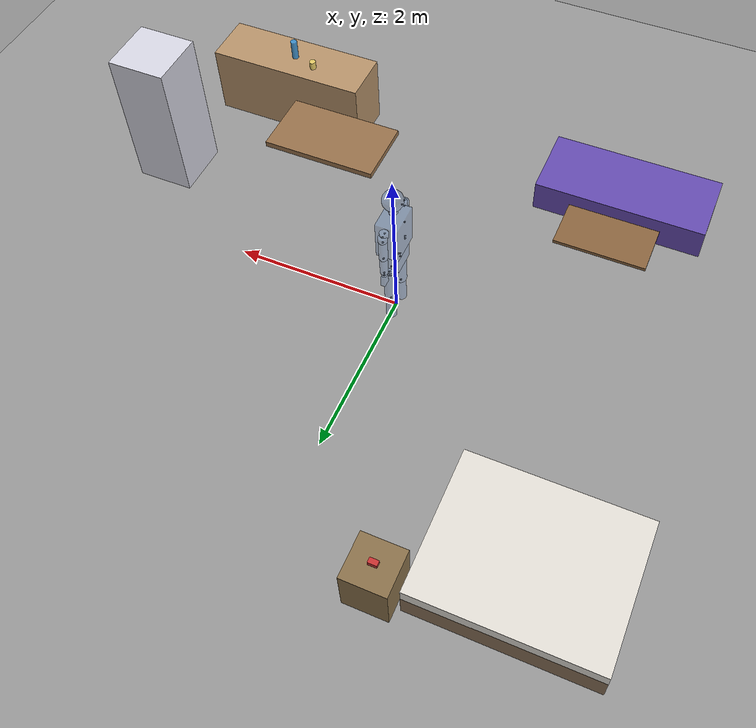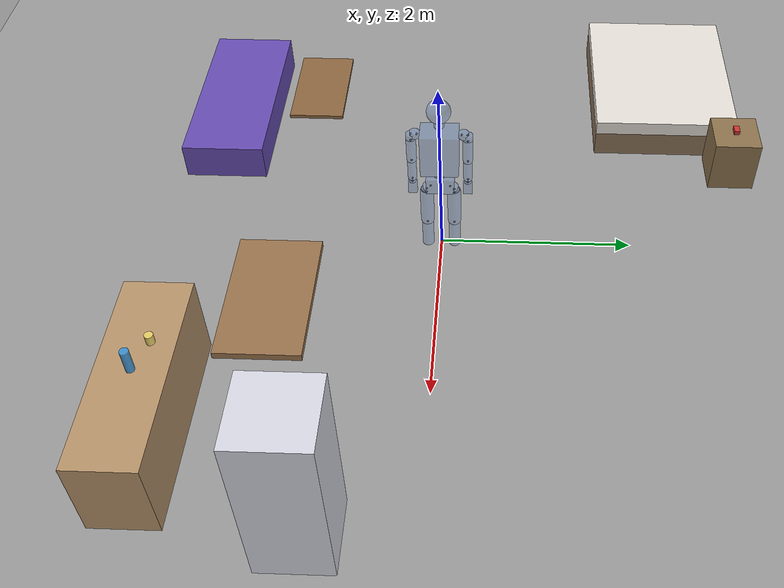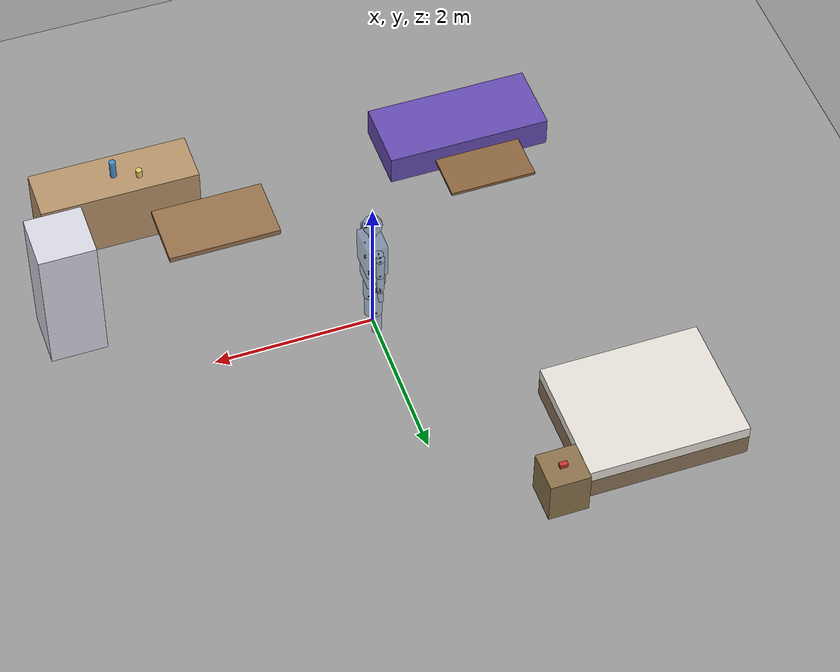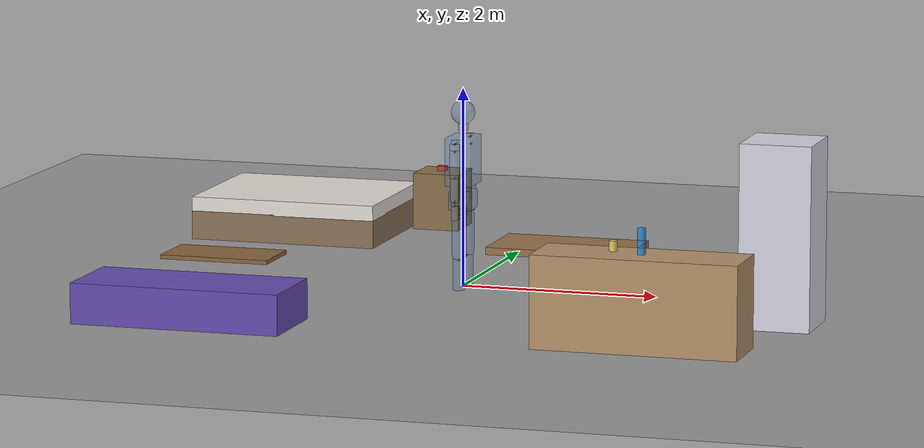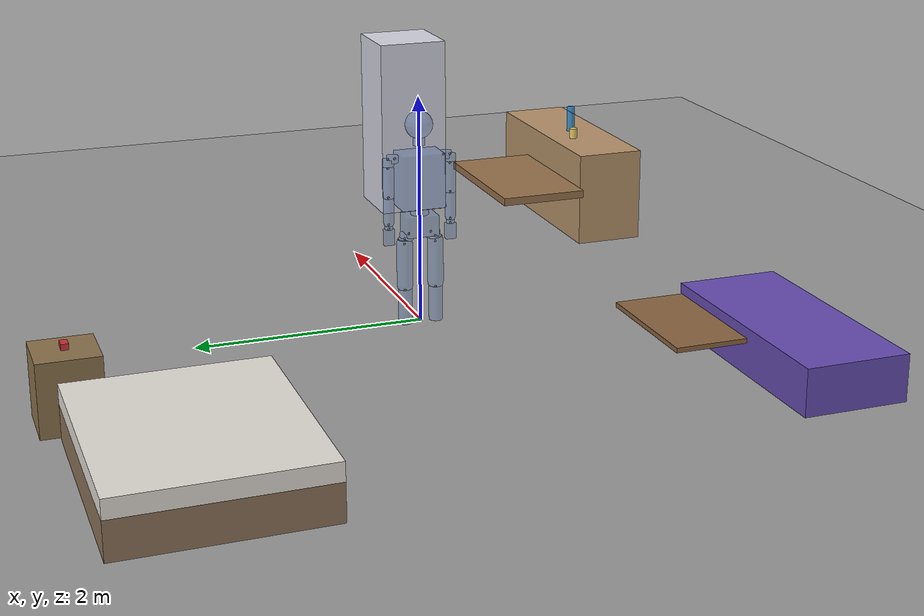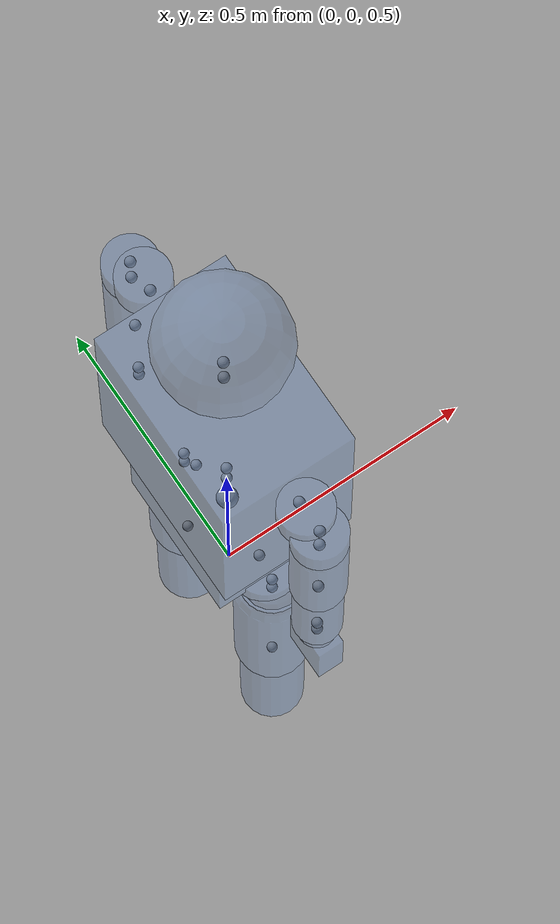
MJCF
<mujoco model="CHATR-H170">
  <compiler angle="radian" coordinate="local" autolimits="true"/>
  <option timestep="0.002" gravity="0 0 -9.81" integrator="implicitfast" cone="pyramidal" impratio="10"/>
  <default>
    <default class="collision">
      <geom contype="1" conaffinity="1" friction="0.8 0.02 0.001" rgba="0.3 0.5 0.8 0.3"/>
    </default>
    <default class="visual">
      <geom contype="0" conaffinity="0" group="1" rgba="0.7 0.7 0.8 1.0"/>
    </default>
    <default class="revolute">
      <joint type="hinge" damping="2.5" armature="0.05" frictionloss="0.5"/>
    </default>
  </default>
  <worldbody>
    <geom name="floor" type="plane" size="20 20 0.1" rgba="0.6 0.6 0.6 1" contype="1" conaffinity="1" friction="0.8 0.02 0.001"/>
    <light directional="true" diffuse="0.8 0.8 0.8" specular="0.2 0.2 0.2" pos="0 0 5" dir="0 0 -1"/>
    <body name="pelvis" pos="0 0 0.88">
      <inertial pos="0.0 0.0 0.0" mass="12.2" fullinertia="0.1 0.08 0.09 0.0 0.0 0.0"/>
      <geom name="pelvis_col" class="collision" pos="0.0 0.0 0.0" type="box" size="0.11 0.14 0.09"/>
      <freejoint name="root"/>
      <body name="waist_intermediate_link" pos="0.0 0.0 0.12">
        <inertial pos="0.0 0.0 0.02" mass="1.0" fullinertia="0.005 0.005 0.006 0.0 0.0 0.0"/>
        <geom name="waist_intermediate_link_col" class="collision" pos="0.0 0.0 0.0" type="cylinder" size="0.08 0.03"/>
        <joint name="waist_yaw" class="revolute" axis="0.0 0.0 1.0" range="-1.57 1.57"/>
        <site name="waist_yaw_site" size="0.01"/>
        <body name="torso" pos="0.0 0.0 0.06">
          <inertial pos="0.01 0.0 0.22" mass="16.2" fullinertia="0.3 0.25 0.22 0.0 0.0 0.0"/>
          <geom name="torso_col" class="collision" pos="0.0 0.0 0.22" type="box" size="0.13 0.19 0.24"/>
          <joint name="waist_pitch" class="revolute" axis="0.0 1.0 0.0" range="-0.52 0.87"/>
          <site name="waist_pitch_site" size="0.01"/>
          <body name="neck_link" pos="0.0 0.0 0.52">
            <inertial pos="0.0 0.0 0.04" mass="0.6" fullinertia="0.002 0.002 0.002 0.0 0.0 0.0"/>
            <geom name="neck_link_col" class="collision" pos="0.0 0.0 0.04" type="cylinder" size="0.05 0.04"/>
            <joint name="neck_yaw" class="revolute" axis="0.0 0.0 1.0" range="-1.57 1.57"/>
            <site name="neck_yaw_site" size="0.01"/>
            <body name="head" pos="0.0 0.0 0.08">
              <inertial pos="0.02 0.0 0.1" mass="2.8" fullinertia="0.022 0.02 0.019 0.0 0.0 0.0"/>
              <geom name="head_col" class="collision" pos="0.0 0.0 0.1" type="sphere" size="0.12"/>
              <joint name="neck_pitch" class="revolute" axis="0.0 1.0 0.0" range="-0.78 0.78"/>
              <site name="neck_pitch_site" size="0.01"/>
            </body>
          </body>
          <body name="l_shoulder_pitch_link" pos="0.0 0.22 0.42">
            <inertial pos="0.0 0.02 0.0" mass="0.7" fullinertia="0.002 0.002 0.002 0.0 0.0 0.0"/>
            <geom name="l_shoulder_pitch_link_col" class="collision" pos="0.0 0.02 0.0" type="cylinder" size="0.05 0.03"/>
            <joint name="l_shoulder_pitch" class="revolute" axis="0.0 1.0 0.0" range="-3.14 1.57"/>
            <site name="l_shoulder_pitch_site" size="0.01"/>
            <body name="l_shoulder_roll_link" pos="0.0 0.06 0.0">
              <inertial pos="0.0 0.0 -0.03" mass="0.6" fullinertia="0.002 0.002 0.002 0.0 0.0 0.0"/>
              <geom name="l_shoulder_roll_link_col" class="collision" pos="0.0 0.0 -0.03" type="cylinder" size="0.05 0.03"/>
              <joint name="l_shoulder_roll" class="revolute" axis="1.0 0.0 0.0" range="-0.35 2.35"/>
              <site name="l_shoulder_roll_site" size="0.01"/>
              <body name="l_upper_arm" pos="0.0 0.0 -0.08">
                <inertial pos="0.0 0.0 -0.12" mass="1.8" fullinertia="0.012 0.012 0.003 0.0 0.0 0.0"/>
                <geom name="l_upper_arm_col" class="collision" pos="0.0 0.0 -0.12" type="capsule" size="0.05 0.12"/>
                <joint name="l_shoulder_yaw" class="revolute" axis="0.0 0.0 1.0" range="-2.09 2.09"/>
                <site name="l_shoulder_yaw_site" size="0.01"/>
                <body name="l_forearm" pos="0.0 0.0 -0.26">
                  <inertial pos="0.0 0.0 -0.11" mass="1.4" fullinertia="0.008 0.008 0.002 0.0 0.0 0.0"/>
                  <geom name="l_forearm_col" class="collision" pos="0.0 0.0 -0.11" type="capsule" size="0.045 0.11"/>
                  <joint name="l_elbow_pitch" class="revolute" axis="0.0 1.0 0.0" range="-2.61 0.0"/>
                  <site name="l_elbow_pitch_site" size="0.01"/>
                  <body name="l_wrist_intermediate_link" pos="0.0 0.0 -0.24">
                    <inertial pos="0.0 0.0 -0.02" mass="0.3" fullinertia="0.001 0.001 0.001 0.0 0.0 0.0"/>
                    <geom name="l_wrist_intermediate_link_col" class="collision" pos="0.0 0.0 -0.02" type="cylinder" size="0.035 0.02"/>
                    <joint name="l_wrist_pitch" class="revolute" axis="0.0 1.0 0.0" range="-1.57 1.57"/>
                    <site name="l_wrist_pitch_site" size="0.01"/>
                    <body name="l_hand" pos="0.0 0.0 -0.04">
                      <inertial pos="0.0 0.0 -0.07" mass="0.7" fullinertia="0.002 0.002 0.001 0.0 0.0 0.0"/>
                      <geom name="l_hand_col" class="collision" pos="0.0 0.0 -0.07" type="box" size="0.025 0.045 0.07"/>
                      <joint name="l_wrist_yaw" class="revolute" axis="0.0 0.0 1.0" range="-1.57 1.57"/>
                      <site name="l_wrist_yaw_site" size="0.01"/>
                    </body>
                  </body>
                </body>
              </body>
            </body>
          </body>
          <body name="r_shoulder_pitch_link" pos="0.0 -0.22 0.42">
            <inertial pos="0.0 -0.02 0.0" mass="0.7" fullinertia="0.002 0.002 0.002 0.0 0.0 0.0"/>
            <geom name="r_shoulder_pitch_link_col" class="collision" pos="0.0 -0.02 0.0" type="cylinder" size="0.05 0.03"/>
            <joint name="r_shoulder_pitch" class="revolute" axis="0.0 1.0 0.0" range="-3.14 1.57"/>
            <site name="r_shoulder_pitch_site" size="0.01"/>
            <body name="r_shoulder_roll_link" pos="0.0 -0.06 0.0">
              <inertial pos="0.0 0.0 -0.03" mass="0.6" fullinertia="0.002 0.002 0.002 0.0 0.0 0.0"/>
              <geom name="r_shoulder_roll_link_col" class="collision" pos="0.0 0.0 -0.03" type="cylinder" size="0.05 0.03"/>
              <joint name="r_shoulder_roll" class="revolute" axis="1.0 0.0 0.0" range="-2.35 0.35"/>
              <site name="r_shoulder_roll_site" size="0.01"/>
              <body name="r_upper_arm" pos="0.0 0.0 -0.08">
                <inertial pos="0.0 0.0 -0.12" mass="1.8" fullinertia="0.012 0.012 0.003 0.0 0.0 0.0"/>
                <geom name="r_upper_arm_col" class="collision" pos="0.0 0.0 -0.12" type="capsule" size="0.05 0.12"/>
                <joint name="r_shoulder_yaw" class="revolute" axis="0.0 0.0 1.0" range="-2.09 2.09"/>
                <site name="r_shoulder_yaw_site" size="0.01"/>
                <body name="r_forearm" pos="0.0 0.0 -0.26">
                  <inertial pos="0.0 0.0 -0.11" mass="1.4" fullinertia="0.008 0.008 0.002 0.0 0.0 0.0"/>
                  <geom name="r_forearm_col" class="collision" pos="0.0 0.0 -0.11" type="capsule" size="0.045 0.11"/>
                  <joint name="r_elbow_pitch" class="revolute" axis="0.0 1.0 0.0" range="-2.61 0.0"/>
                  <site name="r_elbow_pitch_site" size="0.01"/>
                  <body name="r_wrist_intermediate_link" pos="0.0 0.0 -0.24">
                    <inertial pos="0.0 0.0 -0.02" mass="0.3" fullinertia="0.001 0.001 0.001 0.0 0.0 0.0"/>
                    <geom name="r_wrist_intermediate_link_col" class="collision" pos="0.0 0.0 -0.02" type="cylinder" size="0.035 0.02"/>
                    <joint name="r_wrist_pitch" class="revolute" axis="0.0 1.0 0.0" range="-1.57 1.57"/>
                    <site name="r_wrist_pitch_site" size="0.01"/>
                    <body name="r_hand" pos="0.0 0.0 -0.04">
                      <inertial pos="0.0 0.0 -0.07" mass="0.7" fullinertia="0.002 0.002 0.001 0.0 0.0 0.0"/>
                      <geom name="r_hand_col" class="collision" pos="0.0 0.0 -0.07" type="box" size="0.025 0.045 0.07"/>
                      <joint name="r_wrist_yaw" class="revolute" axis="0.0 0.0 1.0" range="-1.57 1.57"/>
                      <site name="r_wrist_yaw_site" size="0.01"/>
                    </body>
                  </body>
                </body>
              </body>
            </body>
          </body>
        </body>
      </body>
      <body name="l_hip_yaw_link" pos="0.0 0.1 -0.08">
        <inertial pos="0.0 0.02 -0.02" mass="1.0" fullinertia="0.003 0.003 0.003 0.0 0.0 0.0"/>
        <geom name="l_hip_yaw_link_col" class="collision" pos="0.0 0.02 -0.02" type="cylinder" size="0.06 0.03"/>
        <joint name="l_hip_yaw" class="revolute" axis="0.0 0.0 1.0" range="-0.78 0.78"/>
        <site name="l_hip_yaw_site" size="0.01"/>
        <body name="l_hip_roll_link" pos="0.0 0.04 -0.04">
          <inertial pos="0.0 0.0 -0.03" mass="1.0" fullinertia="0.003 0.003 0.003 0.0 0.0 0.0"/>
          <geom name="l_hip_roll_link_col" class="collision" pos="0.0 0.0 -0.03" type="cylinder" size="0.06 0.03"/>
          <joint name="l_hip_roll" class="revolute" axis="1.0 0.0 0.0" range="-0.52 0.87"/>
          <site name="l_hip_roll_site" size="0.01"/>
          <body name="l_thigh" pos="0.0 0.0 -0.05">
            <inertial pos="0.0 0.0 -0.18" mass="4.8" fullinertia="0.075 0.075 0.014 0.0 0.0 0.0"/>
            <geom name="l_thigh_col" class="collision" pos="0.0 0.0 -0.18" type="capsule" size="0.07 0.19"/>
            <joint name="l_hip_pitch" class="revolute" axis="0.0 1.0 0.0" range="-1.57 1.05"/>
            <site name="l_hip_pitch_site" size="0.01"/>
            <body name="l_shank" pos="0.0 0.0 -0.42">
              <inertial pos="0.0 0.0 -0.17" mass="3.4" fullinertia="0.045 0.045 0.008 0.0 0.0 0.0"/>
              <geom name="l_shank_col" class="collision" pos="0.0 0.0 -0.17" type="capsule" size="0.06 0.18"/>
              <joint name="l_knee_pitch" class="revolute" axis="0.0 1.0 0.0" range="0.0 2.61"/>
              <site name="l_knee_pitch_site" size="0.01"/>
              <body name="l_ankle_pitch_link" pos="0.0 0.0 -0.4">
                <inertial pos="0.0 0.0 -0.02" mass="0.6" fullinertia="0.002 0.002 0.002 0.0 0.0 0.0"/>
                <geom name="l_ankle_pitch_link_col" class="collision" pos="0.0 0.0 -0.02" type="cylinder" size="0.045 0.025"/>
                <joint name="l_ankle_pitch" class="revolute" axis="0.0 1.0 0.0" range="-0.87 0.78"/>
                <site name="l_ankle_pitch_site" size="0.01"/>
                <body name="l_foot" pos="0.0 0.0 -0.05">
                  <inertial pos="0.04 0.0 -0.03" mass="1.3" fullinertia="0.005 0.011 0.013 0.0 0.0 0.0"/>
                  <geom name="l_foot_col" class="collision" pos="0.04 0.0 -0.03" type="box" size="0.12 0.06 0.03"/>
                  <joint name="l_ankle_roll" class="revolute" axis="1.0 0.0 0.0" range="-0.52 0.52"/>
                  <site name="l_ankle_roll_site" size="0.01"/>
                  <site name="l_foot_touch_site" pos="0 0 -0.02" size="0.05 0.12" type="box"/>
                </body>
              </body>
            </body>
          </body>
        </body>
      </body>
      <body name="r_hip_yaw_link" pos="0.0 -0.1 -0.08">
        <inertial pos="0.0 -0.02 -0.02" mass="1.0" fullinertia="0.003 0.003 0.003 0.0 0.0 0.0"/>
        <geom name="r_hip_yaw_link_col" class="collision" pos="0.0 -0.02 -0.02" type="cylinder" size="0.06 0.03"/>
        <joint name="r_hip_yaw" class="revolute" axis="0.0 0.0 1.0" range="-0.78 0.78"/>
        <site name="r_hip_yaw_site" size="0.01"/>
        <body name="r_hip_roll_link" pos="0.0 -0.04 -0.04">
          <inertial pos="0.0 0.0 -0.03" mass="1.0" fullinertia="0.003 0.003 0.003 0.0 0.0 0.0"/>
          <geom name="r_hip_roll_link_col" class="collision" pos="0.0 0.0 -0.03" type="cylinder" size="0.06 0.03"/>
          <joint name="r_hip_roll" class="revolute" axis="1.0 0.0 0.0" range="-0.87 0.52"/>
          <site name="r_hip_roll_site" size="0.01"/>
          <body name="r_thigh" pos="0.0 0.0 -0.05">
            <inertial pos="0.0 0.0 -0.18" mass="4.8" fullinertia="0.075 0.075 0.014 0.0 0.0 0.0"/>
            <geom name="r_thigh_col" class="collision" pos="0.0 0.0 -0.18" type="capsule" size="0.07 0.19"/>
            <joint name="r_hip_pitch" class="revolute" axis="0.0 1.0 0.0" range="-1.57 1.05"/>
            <site name="r_hip_pitch_site" size="0.01"/>
            <body name="r_shank" pos="0.0 0.0 -0.42">
              <inertial pos="0.0 0.0 -0.17" mass="3.4" fullinertia="0.045 0.045 0.008 0.0 0.0 0.0"/>
              <geom name="r_shank_col" class="collision" pos="0.0 0.0 -0.17" type="capsule" size="0.06 0.18"/>
              <joint name="r_knee_pitch" class="revolute" axis="0.0 1.0 0.0" range="0.0 2.61"/>
              <site name="r_knee_pitch_site" size="0.01"/>
              <body name="r_ankle_pitch_link" pos="0.0 0.0 -0.4">
                <inertial pos="0.0 0.0 -0.02" mass="0.6" fullinertia="0.002 0.002 0.002 0.0 0.0 0.0"/>
                <geom name="r_ankle_pitch_link_col" class="collision" pos="0.0 0.0 -0.02" type="cylinder" size="0.045 0.025"/>
                <joint name="r_ankle_pitch" class="revolute" axis="0.0 1.0 0.0" range="-0.87 0.78"/>
                <site name="r_ankle_pitch_site" size="0.01"/>
                <body name="r_foot" pos="0.0 0.0 -0.05">
                  <inertial pos="0.04 0.0 -0.03" mass="1.3" fullinertia="0.005 0.011 0.013 0.0 0.0 0.0"/>
                  <geom name="r_foot_col" class="collision" pos="0.04 0.0 -0.03" type="box" size="0.12 0.06 0.03"/>
                  <joint name="r_ankle_roll" class="revolute" axis="1.0 0.0 0.0" range="-0.52 0.52"/>
                  <site name="r_ankle_roll_site" size="0.01"/>
                  <site name="r_foot_touch_site" pos="0 0 -0.02" size="0.05 0.12" type="box"/>
                </body>
              </body>
            </body>
          </body>
        </body>
      </body>
      <site name="pelvis" pos="0 0 0" size="0.02"/>
    </body>
    <camera name="head_rgbd" pos="0.05 0 1.65" xyaxes="0 -1 0 0 0 1" fovy="60" resolution="640 480"/>
    <geom name="kitchen_counter" type="box" pos="2.5 -2.5 0.45" size="1.0 0.325 0.45" rgba="0.72 0.58 0.42 1" group="2" contype="1" conaffinity="1"/>
    <geom name="refrigerator" type="box" pos="3.5 -1.0 0.9" size="0.35 0.35 0.9" rgba="0.85 0.85 0.90 1" group="2" contype="1" conaffinity="1"/>
    <geom name="dining_table_top" type="box" pos="1.5 -1.5 0.735" size="0.7 0.4 0.035" rgba="0.60 0.45 0.30 1" group="2" contype="1" conaffinity="1"/>
    <geom name="sofa_seat" type="box" pos="-2.0 -2.5 0.2" size="1.05 0.45 0.2" rgba="0.4 0.3 0.7 1" group="2" contype="1" conaffinity="1"/>
    <geom name="coffee_table_top" type="box" pos="-2.0 -1.5 0.48" size="0.55 0.3 0.02" rgba="0.55 0.40 0.25 1" group="2" contype="1" conaffinity="1"/>
    <geom name="bed_base" type="box" pos="-2.5 2.5 0.15" size="1.0 0.8 0.15" rgba="0.55 0.45 0.35 1" group="2" contype="1" conaffinity="1"/>
    <geom name="bed_mattress" type="box" pos="-2.5 2.5 0.37" size="1.0 0.8 0.08" rgba="0.90 0.88 0.85 1" group="2" contype="1" conaffinity="1"/>
    <geom name="nightstand" type="box" pos="-1.2 3.2 0.3" size="0.25 0.25 0.3" rgba="0.55 0.45 0.30 1" group="2" contype="1" conaffinity="1"/>
    <body name="water_bottle_01" pos="2.5 -2.5 1.025">
      <inertial mass="0.55" pos="0 0 0" diaginertia="0.001 0.001 0.0003"/>
      <geom name="bottle_body" type="cylinder" pos="0 0 0" size="0.04 0.125" rgba="0.2 0.6 0.9 0.85" contype="1" conaffinity="1"/>
      <freejoint name="bottle_joint"/>
    </body>
    <body name="cup_01" pos="2.2 -2.4 0.95">
      <inertial mass="0.20" pos="0 0 0" diaginertia="0.0003 0.0003 0.0002"/>
      <geom name="cup_body" type="cylinder" pos="0 0 0" size="0.04 0.05" rgba="0.9 0.8 0.4 1.0" contype="1" conaffinity="1"/>
      <freejoint name="cup_joint"/>
    </body>
    <body name="medicine_box_01" pos="-1.2 3.2 0.63">
      <inertial mass="0.08" pos="0 0 0" diaginertia="0.00005 0.00008 0.00006"/>
      <geom name="medicine_box_col" type="box" pos="0 0 0" size="0.05 0.03 0.025" rgba="0.8 0.2 0.2 1.0" group="2" contype="1" conaffinity="1"/>
      <freejoint name="medicine_box_joint"/>
    </body>
  </worldbody>
  <actuator>
    <motor name="act_neck_yaw" joint="neck_yaw" gear="30.0" forcelimited="true" forcerange="-20.0 20.0" ctrllimited="true" ctrlrange="-1.57 1.57"/>
    <motor name="act_neck_pitch" joint="neck_pitch" gear="30.0" forcelimited="true" forcerange="-20.0 20.0" ctrllimited="true" ctrlrange="-0.78 0.78"/>
    <motor name="act_waist_yaw" joint="waist_yaw" gear="100.0" forcelimited="true" forcerange="-150.0 150.0" ctrllimited="true" ctrlrange="-1.57 1.57"/>
    <motor name="act_waist_pitch" joint="waist_pitch" gear="100.0" forcelimited="true" forcerange="-150.0 150.0" ctrllimited="true" ctrlrange="-0.52 0.87"/>
    <motor name="act_l_shoulder_pitch" joint="l_shoulder_pitch" gear="80.0" forcelimited="true" forcerange="-80.0 80.0" ctrllimited="true" ctrlrange="-3.14 1.57"/>
    <motor name="act_l_shoulder_roll" joint="l_shoulder_roll" gear="80.0" forcelimited="true" forcerange="-80.0 80.0" ctrllimited="true" ctrlrange="-0.35 2.35"/>
    <motor name="act_l_shoulder_yaw" joint="l_shoulder_yaw" gear="80.0" forcelimited="true" forcerange="-80.0 80.0" ctrllimited="true" ctrlrange="-2.09 2.09"/>
    <motor name="act_l_elbow_pitch" joint="l_elbow_pitch" gear="60.0" forcelimited="true" forcerange="-50.0 50.0" ctrllimited="true" ctrlrange="-2.61 0.0"/>
    <motor name="act_l_wrist_pitch" joint="l_wrist_pitch" gear="50.0" forcelimited="true" forcerange="-25.0 25.0" ctrllimited="true" ctrlrange="-1.57 1.57"/>
    <motor name="act_l_wrist_yaw" joint="l_wrist_yaw" gear="50.0" forcelimited="true" forcerange="-25.0 25.0" ctrllimited="true" ctrlrange="-1.57 1.57"/>
    <motor name="act_r_shoulder_pitch" joint="r_shoulder_pitch" gear="80.0" forcelimited="true" forcerange="-80.0 80.0" ctrllimited="true" ctrlrange="-3.14 1.57"/>
    <motor name="act_r_shoulder_roll" joint="r_shoulder_roll" gear="80.0" forcelimited="true" forcerange="-80.0 80.0" ctrllimited="true" ctrlrange="-2.35 0.35"/>
    <motor name="act_r_shoulder_yaw" joint="r_shoulder_yaw" gear="80.0" forcelimited="true" forcerange="-80.0 80.0" ctrllimited="true" ctrlrange="-2.09 2.09"/>
    <motor name="act_r_elbow_pitch" joint="r_elbow_pitch" gear="60.0" forcelimited="true" forcerange="-50.0 50.0" ctrllimited="true" ctrlrange="-2.61 0.0"/>
    <motor name="act_r_wrist_pitch" joint="r_wrist_pitch" gear="50.0" forcelimited="true" forcerange="-25.0 25.0" ctrllimited="true" ctrlrange="-1.57 1.57"/>
    <motor name="act_r_wrist_yaw" joint="r_wrist_yaw" gear="50.0" forcelimited="true" forcerange="-25.0 25.0" ctrllimited="true" ctrlrange="-1.57 1.57"/>
    <motor name="act_l_hip_yaw" joint="l_hip_yaw" gear="120.0" forcelimited="true" forcerange="-250.0 250.0" ctrllimited="true" ctrlrange="-0.78 0.78"/>
    <motor name="act_l_hip_roll" joint="l_hip_roll" gear="120.0" forcelimited="true" forcerange="-250.0 250.0" ctrllimited="true" ctrlrange="-0.52 0.87"/>
    <motor name="act_l_hip_pitch" joint="l_hip_pitch" gear="120.0" forcelimited="true" forcerange="-250.0 250.0" ctrllimited="true" ctrlrange="-1.57 1.05"/>
    <motor name="act_l_knee_pitch" joint="l_knee_pitch" gear="130.0" forcelimited="true" forcerange="-300.0 300.0" ctrllimited="true" ctrlrange="0.0 2.61"/>
    <motor name="act_l_ankle_pitch" joint="l_ankle_pitch" gear="90.0" forcelimited="true" forcerange="-160.0 160.0" ctrllimited="true" ctrlrange="-0.87 0.78"/>
    <motor name="act_l_ankle_roll" joint="l_ankle_roll" gear="90.0" forcelimited="true" forcerange="-160.0 160.0" ctrllimited="true" ctrlrange="-0.52 0.52"/>
    <motor name="act_r_hip_yaw" joint="r_hip_yaw" gear="120.0" forcelimited="true" forcerange="-250.0 250.0" ctrllimited="true" ctrlrange="-0.78 0.78"/>
    <motor name="act_r_hip_roll" joint="r_hip_roll" gear="120.0" forcelimited="true" forcerange="-250.0 250.0" ctrllimited="true" ctrlrange="-0.87 0.52"/>
    <motor name="act_r_hip_pitch" joint="r_hip_pitch" gear="120.0" forcelimited="true" forcerange="-250.0 250.0" ctrllimited="true" ctrlrange="-1.57 1.05"/>
    <motor name="act_r_knee_pitch" joint="r_knee_pitch" gear="130.0" forcelimited="true" forcerange="-300.0 300.0" ctrllimited="true" ctrlrange="0.0 2.61"/>
    <motor name="act_r_ankle_pitch" joint="r_ankle_pitch" gear="90.0" forcelimited="true" forcerange="-160.0 160.0" ctrllimited="true" ctrlrange="-0.87 0.78"/>
    <motor name="act_r_ankle_roll" joint="r_ankle_roll" gear="90.0" forcelimited="true" forcerange="-160.0 160.0" ctrllimited="true" ctrlrange="-0.52 0.52"/>
  </actuator>
  <sensor>
    <jointpos name="pos_neck_yaw" joint="neck_yaw"/>
    <jointvel name="vel_neck_yaw" joint="neck_yaw"/>
    <actuatorfrc name="torque_neck_yaw" actuator="act_neck_yaw" noise="0.1"/>
    <jointpos name="pos_neck_pitch" joint="neck_pitch"/>
    <jointvel name="vel_neck_pitch" joint="neck_pitch"/>
    <actuatorfrc name="torque_neck_pitch" actuator="act_neck_pitch" noise="0.1"/>
    <jointpos name="pos_waist_yaw" joint="waist_yaw"/>
    <jointvel name="vel_waist_yaw" joint="waist_yaw"/>
    <actuatorfrc name="torque_waist_yaw" actuator="act_waist_yaw" noise="0.1"/>
    <jointpos name="pos_waist_pitch" joint="waist_pitch"/>
    <jointvel name="vel_waist_pitch" joint="waist_pitch"/>
    <actuatorfrc name="torque_waist_pitch" actuator="act_waist_pitch" noise="0.1"/>
    <jointpos name="pos_l_shoulder_pitch" joint="l_shoulder_pitch"/>
    <jointvel name="vel_l_shoulder_pitch" joint="l_shoulder_pitch"/>
    <actuatorfrc name="torque_l_shoulder_pitch" actuator="act_l_shoulder_pitch" noise="0.1"/>
    <jointpos name="pos_l_shoulder_roll" joint="l_shoulder_roll"/>
    <jointvel name="vel_l_shoulder_roll" joint="l_shoulder_roll"/>
    <actuatorfrc name="torque_l_shoulder_roll" actuator="act_l_shoulder_roll" noise="0.1"/>
    <jointpos name="pos_l_shoulder_yaw" joint="l_shoulder_yaw"/>
    <jointvel name="vel_l_shoulder_yaw" joint="l_shoulder_yaw"/>
    <actuatorfrc name="torque_l_shoulder_yaw" actuator="act_l_shoulder_yaw" noise="0.1"/>
    <jointpos name="pos_l_elbow_pitch" joint="l_elbow_pitch"/>
    <jointvel name="vel_l_elbow_pitch" joint="l_elbow_pitch"/>
    <actuatorfrc name="torque_l_elbow_pitch" actuator="act_l_elbow_pitch" noise="0.1"/>
    <jointpos name="pos_l_wrist_pitch" joint="l_wrist_pitch"/>
    <jointvel name="vel_l_wrist_pitch" joint="l_wrist_pitch"/>
    <actuatorfrc name="torque_l_wrist_pitch" actuator="act_l_wrist_pitch" noise="0.1"/>
    <jointpos name="pos_l_wrist_yaw" joint="l_wrist_yaw"/>
    <jointvel name="vel_l_wrist_yaw" joint="l_wrist_yaw"/>
    <actuatorfrc name="torque_l_wrist_yaw" actuator="act_l_wrist_yaw" noise="0.1"/>
    <jointpos name="pos_r_shoulder_pitch" joint="r_shoulder_pitch"/>
    <jointvel name="vel_r_shoulder_pitch" joint="r_shoulder_pitch"/>
    <actuatorfrc name="torque_r_shoulder_pitch" actuator="act_r_shoulder_pitch" noise="0.1"/>
    <jointpos name="pos_r_shoulder_roll" joint="r_shoulder_roll"/>
    <jointvel name="vel_r_shoulder_roll" joint="r_shoulder_roll"/>
    <actuatorfrc name="torque_r_shoulder_roll" actuator="act_r_shoulder_roll" noise="0.1"/>
    <jointpos name="pos_r_shoulder_yaw" joint="r_shoulder_yaw"/>
    <jointvel name="vel_r_shoulder_yaw" joint="r_shoulder_yaw"/>
    <actuatorfrc name="torque_r_shoulder_yaw" actuator="act_r_shoulder_yaw" noise="0.1"/>
    <jointpos name="pos_r_elbow_pitch" joint="r_elbow_pitch"/>
    <jointvel name="vel_r_elbow_pitch" joint="r_elbow_pitch"/>
    <actuatorfrc name="torque_r_elbow_pitch" actuator="act_r_elbow_pitch" noise="0.1"/>
    <jointpos name="pos_r_wrist_pitch" joint="r_wrist_pitch"/>
    <jointvel name="vel_r_wrist_pitch" joint="r_wrist_pitch"/>
    <actuatorfrc name="torque_r_wrist_pitch" actuator="act_r_wrist_pitch" noise="0.1"/>
    <jointpos name="pos_r_wrist_yaw" joint="r_wrist_yaw"/>
    <jointvel name="vel_r_wrist_yaw" joint="r_wrist_yaw"/>
    <actuatorfrc name="torque_r_wrist_yaw" actuator="act_r_wrist_yaw" noise="0.1"/>
    <jointpos name="pos_l_hip_yaw" joint="l_hip_yaw"/>
    <jointvel name="vel_l_hip_yaw" joint="l_hip_yaw"/>
    <actuatorfrc name="torque_l_hip_yaw" actuator="act_l_hip_yaw" noise="0.1"/>
    <jointpos name="pos_l_hip_roll" joint="l_hip_roll"/>
    <jointvel name="vel_l_hip_roll" joint="l_hip_roll"/>
    <actuatorfrc name="torque_l_hip_roll" actuator="act_l_hip_roll" noise="0.1"/>
    <jointpos name="pos_l_hip_pitch" joint="l_hip_pitch"/>
    <jointvel name="vel_l_hip_pitch" joint="l_hip_pitch"/>
    <actuatorfrc name="torque_l_hip_pitch" actuator="act_l_hip_pitch" noise="0.1"/>
    <jointpos name="pos_l_knee_pitch" joint="l_knee_pitch"/>
    <jointvel name="vel_l_knee_pitch" joint="l_knee_pitch"/>
    <actuatorfrc name="torque_l_knee_pitch" actuator="act_l_knee_pitch" noise="0.1"/>
    <jointpos name="pos_l_ankle_pitch" joint="l_ankle_pitch"/>
    <jointvel name="vel_l_ankle_pitch" joint="l_ankle_pitch"/>
    <actuatorfrc name="torque_l_ankle_pitch" actuator="act_l_ankle_pitch" noise="0.1"/>
    <jointpos name="pos_l_ankle_roll" joint="l_ankle_roll"/>
    <jointvel name="vel_l_ankle_roll" joint="l_ankle_roll"/>
    <actuatorfrc name="torque_l_ankle_roll" actuator="act_l_ankle_roll" noise="0.1"/>
    <jointpos name="pos_r_hip_yaw" joint="r_hip_yaw"/>
    <jointvel name="vel_r_hip_yaw" joint="r_hip_yaw"/>
    <actuatorfrc name="torque_r_hip_yaw" actuator="act_r_hip_yaw" noise="0.1"/>
    <jointpos name="pos_r_hip_roll" joint="r_hip_roll"/>
    <jointvel name="vel_r_hip_roll" joint="r_hip_roll"/>
    <actuatorfrc name="torque_r_hip_roll" actuator="act_r_hip_roll" noise="0.1"/>
    <jointpos name="pos_r_hip_pitch" joint="r_hip_pitch"/>
    <jointvel name="vel_r_hip_pitch" joint="r_hip_pitch"/>
    <actuatorfrc name="torque_r_hip_pitch" actuator="act_r_hip_pitch" noise="0.1"/>
    <jointpos name="pos_r_knee_pitch" joint="r_knee_pitch"/>
    <jointvel name="vel_r_knee_pitch" joint="r_knee_pitch"/>
    <actuatorfrc name="torque_r_knee_pitch" actuator="act_r_knee_pitch" noise="0.1"/>
    <jointpos name="pos_r_ankle_pitch" joint="r_ankle_pitch"/>
    <jointvel name="vel_r_ankle_pitch" joint="r_ankle_pitch"/>
    <actuatorfrc name="torque_r_ankle_pitch" actuator="act_r_ankle_pitch" noise="0.1"/>
    <jointpos name="pos_r_ankle_roll" joint="r_ankle_roll"/>
    <jointvel name="vel_r_ankle_roll" joint="r_ankle_roll"/>
    <actuatorfrc name="torque_r_ankle_roll" actuator="act_r_ankle_roll" noise="0.1"/>
    <touch name="touch_l_foot" site="l_foot_touch_site"/>
    <touch name="touch_r_foot" site="r_foot_touch_site"/>
  </sensor>
</mujoco>
